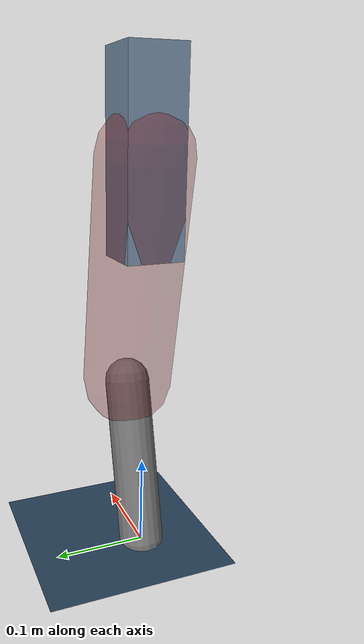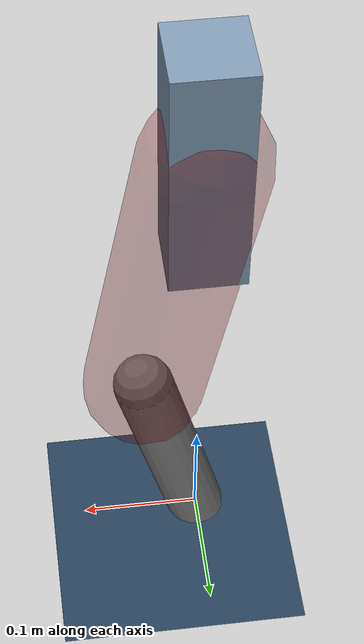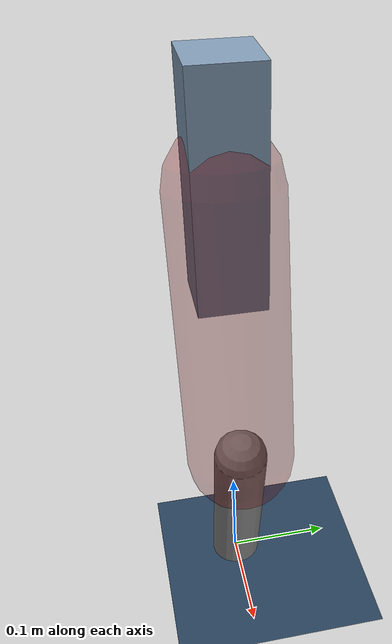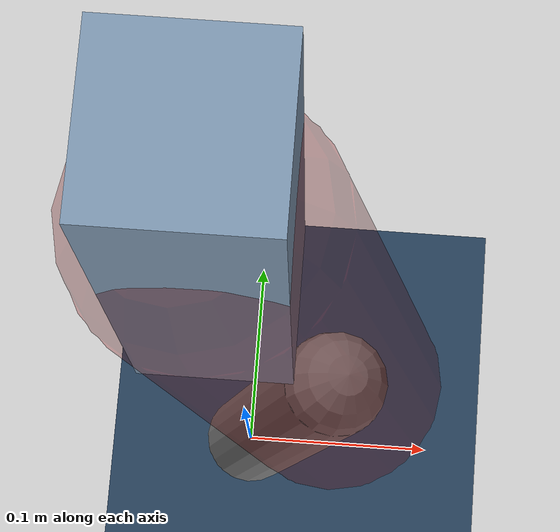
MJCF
<mujoco model="Hopper2D">
	<compiler inertiafromgeom="true" angle="radian" />
	<option timestep="0.001" integrator="implicit" cone="elliptic" solver="Newton" tolerance="1e-10" />

	<default>
		<geom contype="1" conaffinity="1" condim="3" friction="2 0.005 0.0001" solref="0.005 1" />
		<joint limited="true" damping="0.1" />
	</default>

	<asset>
		<texture name="skybox" type="skybox" builtin="gradient" rgb1=".4 .6 .8" rgb2="0 0 0" width="800" height="800" />
		<texture name="grid" type="2d" builtin="checker" rgb1=".1 .2 .3" rgb2=".2 .3 .4" width="300" height="300" mark="edge" markrgb=".2 .3 .4" />
		<material name="ground" texture="grid" texrepeat="1 1" texuniform="true" reflectance="0.1" />
		<material name="leg" rgba="0.5 0.6 0.7 1" />
	</asset>

	<worldbody>

		<geom name="floor" type="plane" size="5 5 0.25" material="ground" />

		<light directional="false" diffuse="0.8 0.8 0.8" specular="0.3 0.3 0.3" pos="0 0 2" dir="0 0 -1" />
		<light mode="targetbodycom" target="base" directional="false" diffuse="0.8 0.8 0.8" specular="0.3 0.3 0.3" pos="0 0 2" dir="0 0 -1" />

		<camera name="fixed" pos="0 -2 1" xyaxes="1 0 0 0 0 1" />
		<camera name="tracking" mode="trackcom" pos="0 -3 1" />

		<body name="root" pos="0 0 0.4298849977660597">
			<joint name="slide_x" type="slide" axis="1 0 0" range="-100 100" />
			<joint name="slide_z" type="slide" axis="0 0 1" range="0 10" />

			<body name="base" pos="0 0 0">
				<geom name="torso" type="box" size="0.03 0.03 0.1" mass="1.699" material="leg" />

				<body name="link1" pos="0 0 0" euler="0 1.3875406898727214 0">
					<joint type="hinge" axis="0 -1 0" pos="0 0 0" name="hinge1" limited="true" range="-3.14 3.14" stiffness="0" damping="0.1" />
					<geom name="thigh" type="capsule" fromto="0 0 0 0.2528672277155967 0 0" size="0.05" rgba="0.5 0 0 0.3" mass="0.8638547920605515" />

					<body name="link2" pos="0.2528672277155967 0 0" euler="0 0.43221538361444617 0">
						<joint type="hinge" axis="0 -1 0" pos="0 0 0" name="hinge2" limited="true" range="-3.14 3.14" stiffness="0" damping="0.1" />
						<geom name="shank" type="capsule" fromto="0 0 0 0.187017770050463 0 0" size="0.025" mass="0.3899142160403704" />

					</body>
				</body>
			</body>
		</body>
	</worldbody>

	<actuator>
		<motor name="torque1" joint="hinge1" ctrlrange="-53.470947495227314 53.470947495227314" ctrllimited="true" gear="1" />
		<motor name="torque2" joint="hinge2" ctrlrange="-27.735874911491706 27.735874911491706" ctrllimited="true" gear="1" />
	</actuator>
</mujoco>
